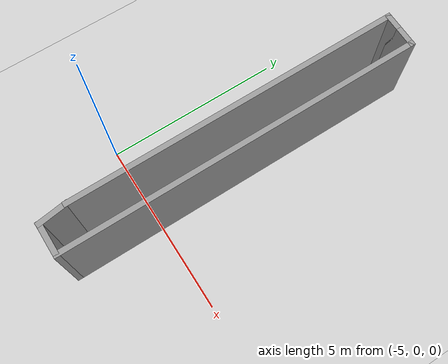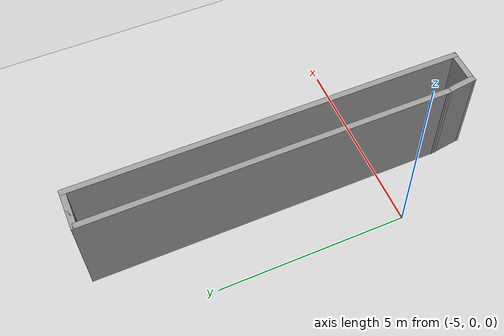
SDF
<sdf version="1.6">
 <world name="default">
  <model name="ground_plane">
   <static>1</static>
   <link name="link">
    <collision name="collision">
     <geometry><plane><normal>0 0 1</normal><size>100 100</size></plane></geometry>
     <surface><friction><ode><mu>100</mu><mu2>50</mu2></ode></friction></surface>
    </collision>
    <visual name="visual">
     <cast_shadows>0</cast_shadows>
     <geometry><plane><normal>0 0 1</normal><size>100 100</size></plane></geometry>
     <material>
      <script><uri>file://media/materials/scripts/gazebo.material</uri><name>Gazebo/Grey</name></script>
     </material>
    </visual>
   </link>
  </model>
  <model name="just_closed_walls">
   <pose>-3.00854 2.56562 0 0 -0 0</pose>
   <link name="Wall_0">
    <collision name="Wall_0_Collision">
     <geometry><box><size>9.5 0.15 2.5</size></box></geometry>
     <pose>0 0 1.25 0 -0 0</pose>
    </collision>
    <visual name="Wall_0_Visual">
     <pose>0 0 1.25 0 -0 0</pose>
     <geometry><box><size>9.5 0.15 2.5</size></box></geometry>
     <material>
      <script><uri>file://media/materials/scripts/gazebo.material</uri><name>Gazebo/Grey</name></script>
      <ambient>1 1 1 1</ambient>
     </material>
    </visual>
    <pose>-0.470373 0.379627 0 0 -0 1.5708</pose>
   </link>
   <link name="Wall_1">
    <collision name="Wall_1_Collision">
     <geometry><box><size>0.5 0.15 2.5</size></box></geometry>
     <pose>0 0 1.25 0 -0 0</pose>
    </collision>
    <visual name="Wall_1_Visual">
     <pose>0 0 1.25 0 -0 0</pose>
     <geometry><box><size>0.5 0.15 2.5</size></box></geometry>
     <material>
      <script><uri>file://media/materials/scripts/gazebo.material</uri><name>Gazebo/Grey</name></script>
      <ambient>1 1 1 1</ambient>
     </material>
    </visual>
    <pose>-0.295373 5.05463 0 0 -0 0</pose>
   </link>
   <link name="Wall_2">
    <collision name="Wall_2_Collision">
     <geometry><box><size>0.75 0.15 2.5</size></box></geometry>
     <pose>0 0 1.25 0 -0 0</pose>
    </collision>
    <visual name="Wall_2_Visual">
     <pose>0 0 1.25 0 -0 0</pose>
     <geometry><box><size>0.75 0.15 2.5</size></box></geometry>
     <material>
      <script><uri>file://media/materials/scripts/gazebo.material</uri><name>Gazebo/Grey</name></script>
      <ambient>1 1 1 1</ambient>
     </material>
    </visual>
    <pose>0.179627 5.05463 0 0 -0 0</pose>
   </link>
   <link name="Wall_3">
    <collision name="Wall_3_Collision">
     <geometry><box><size>10.25 0.15 2.5</size></box></geometry>
     <pose>0 0 1.25 0 -0 0</pose>
    </collision>
    <visual name="Wall_3_Visual">
     <pose>0 0 1.25 0 -0 0</pose>
     <geometry><box><size>10.25 0.15 2.5</size></box></geometry>
     <material>
      <script><uri>file://media/materials/scripts/gazebo.material</uri><name>Gazebo/Grey</name></script>
      <ambient>1 1 1 1</ambient>
     </material>
    </visual>
    <pose>0.479627 0.004627 0 0 0 -1.5708</pose>
   </link>
   <link name="Wall_4">
    <collision name="Wall_4_Collision">
     <geometry><box><size>1 0.15 2.5</size></box></geometry>
     <pose>0 0 1.25 0 -0 0</pose>
    </collision>
    <visual name="Wall_4_Visual">
     <pose>0 0 1.25 0 -0 0</pose>
     <geometry><box><size>1 0.15 2.5</size></box></geometry>
     <material>
      <script><uri>file://media/materials/scripts/gazebo.material</uri><name>Gazebo/Grey</name></script>
      <ambient>1 1 1 1</ambient>
     </material>
    </visual>
    <pose>0.054627 -5.04537 0 0 -0 3.14159</pose>
   </link>
   <link name="Wall_5">
    <collision name="Wall_5_Collision">
     <geometry><box><size>0.906637 0.15 2.5</size></box></geometry>
     <pose>0 0 1.25 0 -0 0</pose>
    </collision>
    <visual name="Wall_5_Visual">
     <pose>0 0 1.25 0 -0 0</pose>
     <geometry><box><size>0.906637 0.15 2.5</size></box></geometry>
     <material>
      <script><uri>file://media/materials/scripts/gazebo.material</uri><name>Gazebo/Grey</name></script>
      <ambient>1 1 1 1</ambient>
     </material>
    </visual>
    <pose>-0.420373 -4.67037 0 0 -0 1.70335</pose>
   </link>
   <static>1</static>
  </model>
 </world>
</sdf>
